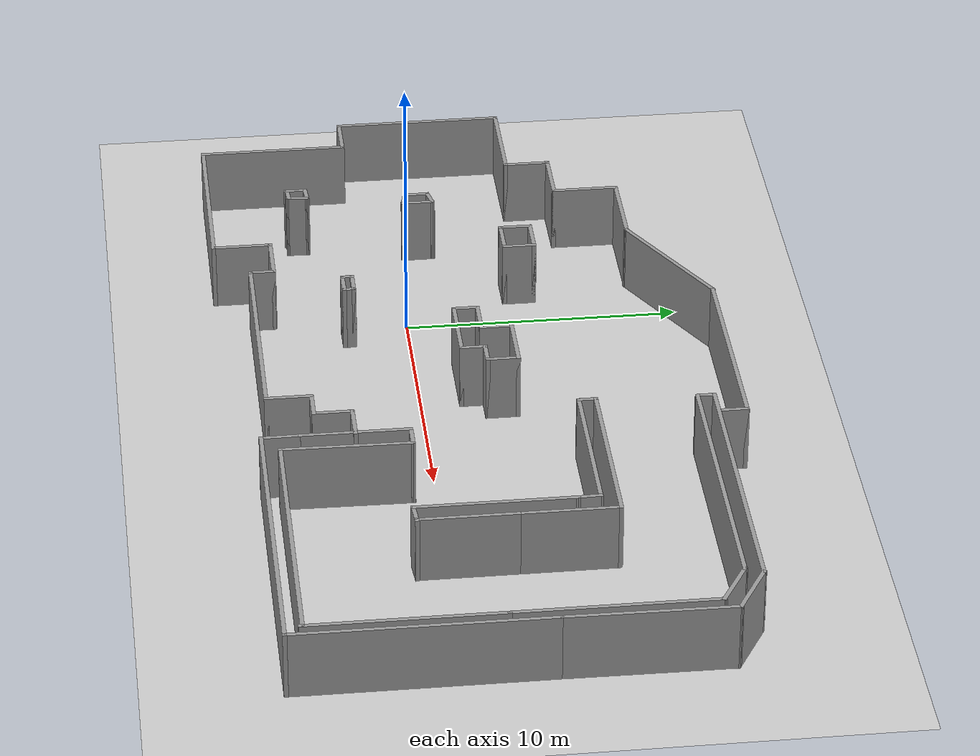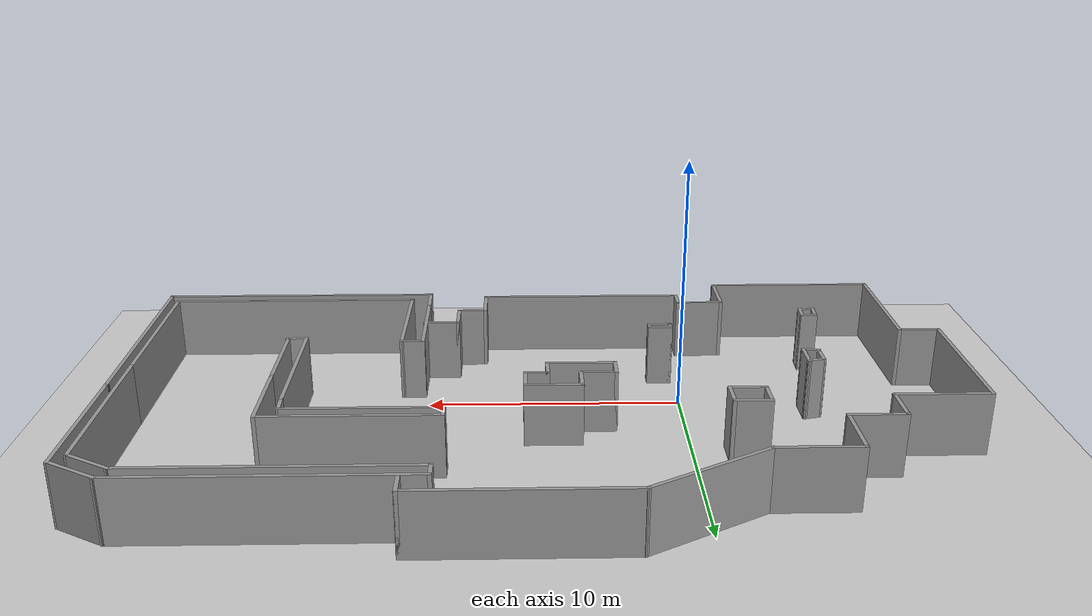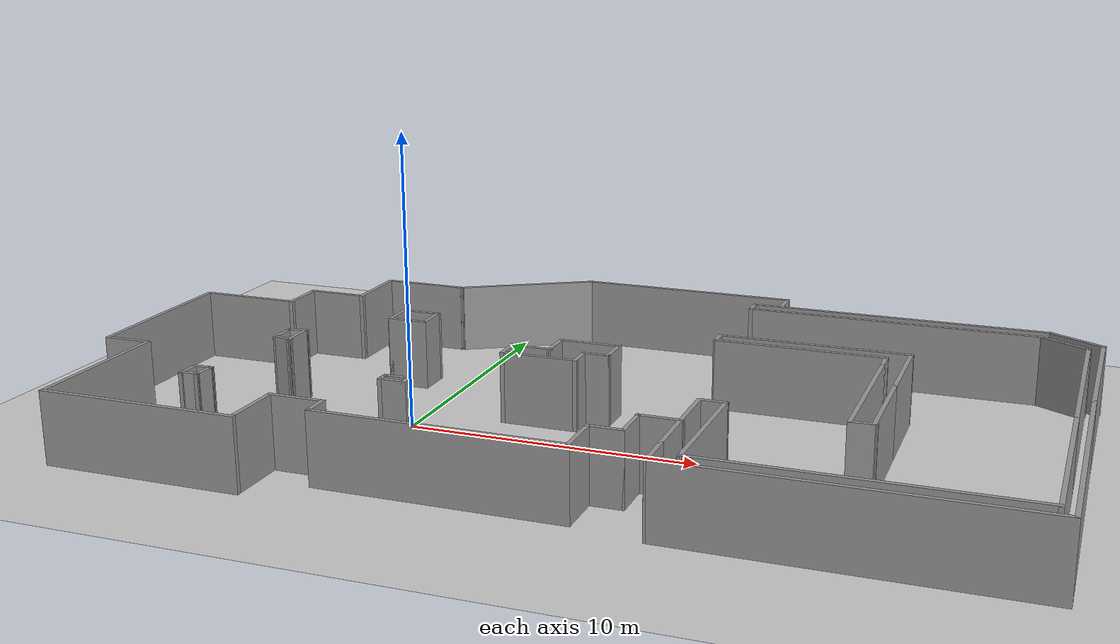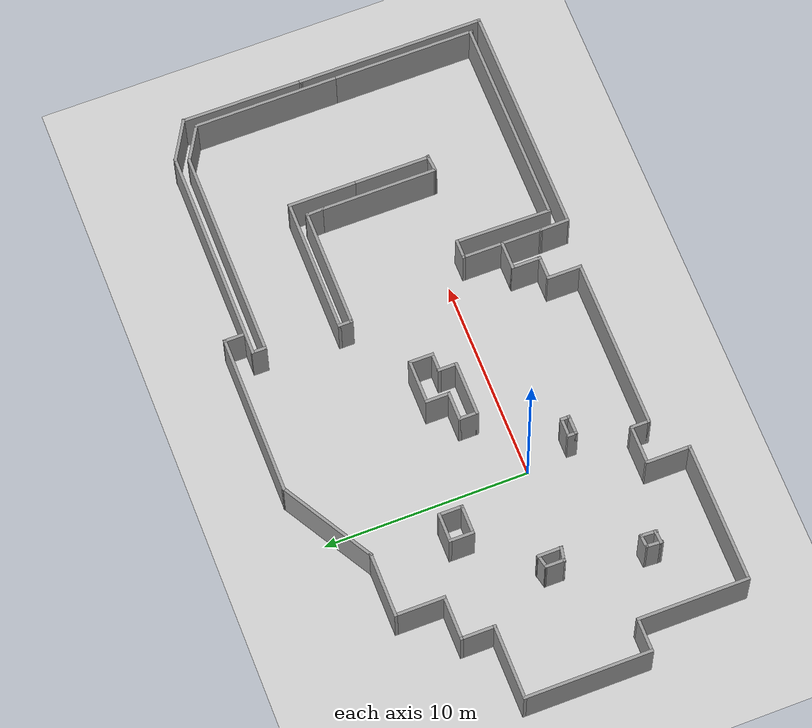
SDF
<sdf version="1.6">
 <world name="default">
  <light name="sun" type="directional">
   <pose>0 0 10 0 -0 0</pose>
   <diffuse>0.8 0.8 0.8 1</diffuse>
   <specular>0.2 0.2 0.2 1</specular>
   <attenuation>
    <range>1000</range>
    <constant>0.9</constant>
    <linear>0.01</linear>
    <quadratic>0.001</quadratic>
   </attenuation>
   <direction>-0.5 0.1 -0.9</direction>
  </light>
  <model name="ground_plane">
   <static>1</static>
   <link name="link">
    <collision name="collision">
     <geometry><plane><normal>0 0 1</normal><size>100 100</size></plane></geometry>
     <surface>
      <contact><collide_bitmask>65535</collide_bitmask></contact>
      <friction><ode><mu>100</mu><mu2>50</mu2></ode></friction>
     </surface>
    </collision>
    <visual name="visual">
     <cast_shadows>0</cast_shadows>
     <geometry><plane><normal>0 0 1</normal><size>100 100</size></plane></geometry>
     <material>
      <script><uri>file://media/materials/scripts/gazebo.material</uri><name>Gazebo/Grey</name></script>
     </material>
    </visual>
   </link>
  </model>
  <gravity>0 0 -9.8</gravity>
  <magnetic_field>6e-06 2.3e-05 -4.2e-05</magnetic_field>
  <atmosphere type="adiabatic"/>
  <physics name="default_physics" default="0" type="ode">
   <max_step_size>0.001</max_step_size>
   <real_time_factor>1</real_time_factor>
   <real_time_update_rate>1000</real_time_update_rate>
  </physics>
  <scene><ambient>0.4 0.4 0.4 1</ambient><background>0.7 0.7 0.7 1</background><shadows>1</shadows></scene>
  <audio><device>default</device></audio>
  <spherical_coordinates>
   <surface_model>EARTH_WGS84</surface_model>
   <latitude_deg>0</latitude_deg>
   <longitude_deg>0</longitude_deg>
   <elevation>0</elevation>
   <heading_deg>0</heading_deg>
  </spherical_coordinates>
  <model name="wow">
   <pose>5.45276 2.03181 0 0 -0 0</pose>
   <link name="Wall_10">
    <collision name="Wall_10_Collision">
     <geometry><box><size>1.25 0.15 2.5</size></box></geometry>
     <pose>0 0 1.25 0 -0 0</pose>
    </collision>
    <visual name="Wall_10_Visual">
     <pose>0 0 1.25 0 -0 0</pose>
     <geometry><box><size>1.25 0.15 2.5</size></box></geometry>
     <material>
      <script><uri>file://media/materials/scripts/gazebo.material</uri><name>Gazebo/Grey</name></script>
      <ambient>1 1 1 1</ambient>
     </material>
     <meta><layer>0</layer></meta>
    </visual>
    <pose>-10.2541 -1.15179 0 0 -0 -1.5708</pose>
   </link>
   <link name="Wall_12">
    <collision name="Wall_12_Collision">
     <geometry><box><size>1 0.15 2.5</size></box></geometry>
     <pose>0 0 1.25 0 -0 0</pose>
    </collision>
    <visual name="Wall_12_Visual">
     <pose>0 0 1.25 0 -0 0</pose>
     <geometry><box><size>1 0.15 2.5</size></box></geometry>
     <material>
      <script><uri>file://media/materials/scripts/gazebo.material</uri><name>Gazebo/Grey</name></script>
      <ambient>1 1 1 1</ambient>
     </material>
     <meta><layer>0</layer></meta>
    </visual>
    <pose>-10.8427 -1.16134 0 0 -0 -1.5708</pose>
   </link>
   <link name="Wall_14">
    <collision name="Wall_14_Collision">
     <geometry><box><size>0.705553 0.15 2.5</size></box></geometry>
     <pose>0 0 1.25 0 -0 0</pose>
    </collision>
    <visual name="Wall_14_Visual">
     <pose>0 0 1.25 0 -0 0</pose>
     <geometry><box><size>0.705553 0.15 2.5</size></box></geometry>
     <material>
      <script><uri>file://media/materials/scripts/gazebo.material</uri><name>Gazebo/Grey</name></script>
      <ambient>1 1 1 1</ambient>
     </material>
     <meta><layer>0</layer></meta>
    </visual>
    <pose>-11.2993 -5.29308 0 0 -0 0.072473</pose>
   </link>
   <link name="Wall_15">
    <collision name="Wall_15_Collision">
     <geometry><box><size>0.834596 0.15 2.5</size></box></geometry>
     <pose>0 0 1.25 0 -0 0</pose>
    </collision>
    <visual name="Wall_15_Visual">
     <pose>0 0 1.25 0 -0 0</pose>
     <geometry><box><size>0.834596 0.15 2.5</size></box></geometry>
     <material>
      <script><uri>file://media/materials/scripts/gazebo.material</uri><name>Gazebo/Grey</name></script>
      <ambient>1 1 1 1</ambient>
     </material>
     <meta><layer>0</layer></meta>
    </visual>
    <pose>-11.0424 -5.6549 0 0 -0 -1.62959</pose>
   </link>
   <link name="Wall_16">
    <collision name="Wall_16_Collision">
     <geometry><box><size>0.705553 0.15 2.5</size></box></geometry>
     <pose>0 0 1.25 0 -0 0</pose>
    </collision>
    <visual name="Wall_16_Visual">
     <pose>0 0 1.25 0 -0 0</pose>
     <geometry><box><size>0.705553 0.15 2.5</size></box></geometry>
     <material>
      <script><uri>file://media/materials/scripts/gazebo.material</uri><name>Gazebo/Grey</name></script>
      <ambient>1 1 1 1</ambient>
     </material>
     <meta><layer>0</layer></meta>
    </visual>
    <pose>-11.3395 -5.97649 0 0 -0 -3.06912</pose>
   </link>
   <link name="Wall_17">
    <collision name="Wall_17_Collision">
     <geometry><box><size>0.834596 0.15 2.5</size></box></geometry>
     <pose>0 0 1.25 0 -0 0</pose>
    </collision>
    <visual name="Wall_17_Visual">
     <pose>0 0 1.25 0 -0 0</pose>
     <geometry><box><size>0.834596 0.15 2.5</size></box></geometry>
     <material>
      <script><uri>file://media/materials/scripts/gazebo.material</uri><name>Gazebo/Grey</name></script>
      <ambient>1 1 1 1</ambient>
     </material>
     <meta><layer>0</layer></meta>
    </visual>
    <pose>-11.5965 -5.69512 0 0 -0 1.512</pose>
   </link>
   <link name="Wall_19">
    <collision name="Wall_19_Collision">
     <geometry><box><size>1.25 0.15 2.5</size></box></geometry>
     <pose>0 0 1.25 0 -0 0</pose>
    </collision>
    <visual name="Wall_19_Visual">
     <pose>0 0 1.25 0 -0 0</pose>
     <geometry><box><size>1.25 0.15 2.5</size></box></geometry>
     <material>
      <script><uri>file://media/materials/scripts/gazebo.material</uri><name>Gazebo/Grey</name></script>
      <ambient>1 1 1 1</ambient>
     </material>
     <meta><layer>0</layer></meta>
    </visual>
    <pose>-8.12453 2.29574 0 0 -0 -1.5708</pose>
   </link>
   <link name="Wall_20">
    <collision name="Wall_20_Collision">
     <geometry><box><size>1.5 0.15 2.5</size></box></geometry>
     <pose>0 0 1.25 0 -0 0</pose>
    </collision>
    <visual name="Wall_20_Visual">
     <pose>0 0 1.25 0 -0 0</pose>
     <geometry><box><size>1.5 0.15 2.5</size></box></geometry>
     <material>
      <script><uri>file://media/materials/scripts/gazebo.material</uri><name>Gazebo/Grey</name></script>
      <ambient>1 1 1 1</ambient>
     </material>
     <meta><layer>0</layer></meta>
    </visual>
    <pose>-7.44953 1.74574 0 0 -0 0</pose>
   </link>
   <link name="Wall_21">
    <collision name="Wall_21_Collision">
     <geometry><box><size>1.25 0.15 2.5</size></box></geometry>
     <pose>0 0 1.25 0 -0 0</pose>
    </collision>
    <visual name="Wall_21_Visual">
     <pose>0 0 1.25 0 -0 0</pose>
     <geometry><box><size>1.25 0.15 2.5</size></box></geometry>
     <material>
      <script><uri>file://media/materials/scripts/gazebo.material</uri><name>Gazebo/Grey</name></script>
      <ambient>1 1 1 1</ambient>
     </material>
     <meta><layer>0</layer></meta>
    </visual>
    <pose>-6.77453 2.29574 0 0 -0 1.5708</pose>
   </link>
   <link name="Wall_22">
    <collision name="Wall_22_Collision">
     <geometry><box><size>1.5 0.15 2.5</size></box></geometry>
     <pose>0 0 1.25 0 -0 0</pose>
    </collision>
    <visual name="Wall_22_Visual">
     <pose>0 0 1.25 0 -0 0</pose>
     <geometry><box><size>1.5 0.15 2.5</size></box></geometry>
     <material>
      <script><uri>file://media/materials/scripts/gazebo.material</uri><name>Gazebo/Grey</name></script>
      <ambient>1 1 1 1</ambient>
     </material>
     <meta><layer>0</layer></meta>
    </visual>
    <pose>-7.44953 2.84574 0 0 -0 3.14159</pose>
   </link>
   <link name="Wall_24">
    <collision name="Wall_24_Collision">
     <geometry><box><size>4 0.15 2.5</size></box></geometry>
     <pose>0 0 1.25 0 -0 0</pose>
    </collision>
    <visual name="Wall_24_Visual">
     <pose>0 0 1.25 0 -0 0</pose>
     <geometry><box><size>4 0.15 2.5</size></box></geometry>
     <material>
      <script><uri>file://media/materials/scripts/gazebo.material</uri><name>Gazebo/Grey</name></script>
      <ambient>1 1 1 1</ambient>
     </material>
     <meta><layer>0</layer></meta>
    </visual>
    <pose>4.81414 -4.78559 0 0 -0 -1.5708</pose>
   </link>
   <link name="Wall_26">
    <collision name="Wall_26_Collision">
     <geometry><box><size>1 0.15 2.5</size></box></geometry>
     <pose>0 0 1.25 0 -0 0</pose>
    </collision>
    <visual name="Wall_26_Visual">
     <pose>0 0 1.25 0 -0 0</pose>
     <geometry><box><size>1 0.15 2.5</size></box></geometry>
     <material>
      <script><uri>file://media/materials/scripts/gazebo.material</uri><name>Gazebo/Grey</name></script>
      <ambient>1 1 1 1</ambient>
     </material>
     <meta><layer>0</layer></meta>
    </visual>
    <pose>5.23914 -2.86059 0 0 -0 0</pose>
   </link>
   <link name="Wall_27">
    <collision name="Wall_27_Collision">
     <geometry><box><size>4.75 0.15 2.5</size></box></geometry>
     <pose>0 0 1.25 0 -0 0</pose>
    </collision>
    <visual name="Wall_27_Visual">
     <pose>0 0 1.25 0 -0 0</pose>
     <geometry><box><size>4.75 0.15 2.5</size></box></geometry>
     <material>
      <script><uri>file://media/materials/scripts/gazebo.material</uri><name>Gazebo/Grey</name></script>
      <ambient>1 1 1 1</ambient>
     </material>
     <meta><layer>0</layer></meta>
    </visual>
    <pose>5.63355 -5.16059 0 0 -0 -1.5841</pose>
   </link>
   <link name="Wall_28">
    <collision name="Wall_28_Collision">
     <geometry><box><size>10.25 0.15 2.5</size></box></geometry>
     <pose>0 0 1.25 0 -0 0</pose>
    </collision>
    <visual name="Wall_28_Visual">
     <pose>0 0 1.25 0 -0 0</pose>
     <geometry><box><size>10.25 0.15 2.5</size></box></geometry>
     <material>
      <script><uri>file://media/materials/scripts/gazebo.material</uri><name>Gazebo/Grey</name></script>
      <ambient>1 1 1 1</ambient>
     </material>
     <meta><layer>0</layer></meta>
    </visual>
    <pose>10.6835 -7.46059 0 0 -0 0</pose>
   </link>
   <link name="Wall_30">
    <collision name="Wall_30_Collision">
     <geometry><box><size>5.75 0.15 2.5</size></box></geometry>
     <pose>0 0 1.25 0 -0 0</pose>
    </collision>
    <visual name="Wall_30_Visual">
     <pose>0 0 1.25 0 -0 0</pose>
     <geometry><box><size>5.75 0.15 2.5</size></box></geometry>
     <material>
      <script><uri>file://media/materials/scripts/gazebo.material</uri><name>Gazebo/Grey</name></script>
      <ambient>1 1 1 1</ambient>
     </material>
     <meta><layer>0</layer></meta>
    </visual>
    <pose>9.51586 -0.401675 0 0 -0 1.5708</pose>
   </link>
   <link name="Wall_32">
    <collision name="Wall_32_Collision">
     <geometry><box><size>0.911409 0.15 2.5</size></box></geometry>
     <pose>0 0 1.25 0 -0 0</pose>
    </collision>
    <visual name="Wall_32_Visual">
     <pose>0 0 1.25 0 -0 0</pose>
     <geometry><box><size>0.911409 0.15 2.5</size></box></geometry>
     <material>
      <script><uri>file://media/materials/scripts/gazebo.material</uri><name>Gazebo/Grey</name></script>
      <ambient>1 1 1 1</ambient>
     </material>
     <meta><layer>0</layer></meta>
    </visual>
    <pose>9.89539 -3.20703 0 0 -0 0.078423</pose>
   </link>
   <link name="Wall_33">
    <collision name="Wall_33_Collision">
     <geometry><box><size>3.75 0.15 2.5</size></box></geometry>
     <pose>0 0 1.25 0 -0 0</pose>
    </collision>
    <visual name="Wall_33_Visual">
     <pose>0 0 1.25 0 -0 0</pose>
     <geometry><box><size>3.75 0.15 2.5</size></box></geometry>
     <material>
      <script><uri>file://media/materials/scripts/gazebo.material</uri><name>Gazebo/Grey</name></script>
      <ambient>1 1 1 1</ambient>
     </material>
     <meta><layer>0</layer></meta>
    </visual>
    <pose>10.2397 -1.3772 0 0 -0 1.5708</pose>
   </link>
   <link name="Wall_36">
    <collision name="Wall_36_Collision">
     <geometry><box><size>7 0.15 2.5</size></box></geometry>
     <pose>0 0 1.25 0 -0 0</pose>
    </collision>
    <visual name="Wall_36_Visual">
     <pose>0 0 1.25 0 -0 0</pose>
     <geometry><box><size>7 0.15 2.5</size></box></geometry>
     <material>
      <script><uri>file://media/materials/scripts/gazebo.material</uri><name>Gazebo/Grey</name></script>
      <ambient>1 1 1 1</ambient>
     </material>
     <meta><layer>0</layer></meta>
    </visual>
    <pose>15.7639 -4.09274 0 0 -0 -1.5708</pose>
   </link>
   <link name="Wall_39">
    <collision name="Wall_39_Collision">
     <geometry><box><size>9.25 0.15 2.5</size></box></geometry>
     <pose>0 0 1.25 0 -0 0</pose>
    </collision>
    <visual name="Wall_39_Visual">
     <pose>0 0 1.25 0 -0 0</pose>
     <geometry><box><size>9.25 0.15 2.5</size></box></geometry>
     <material>
      <script><uri>file://media/materials/scripts/gazebo.material</uri><name>Gazebo/Grey</name></script>
      <ambient>1 1 1 1</ambient>
     </material>
     <meta><layer>0</layer></meta>
    </visual>
    <pose>16.1862 -3.52365 0 0 -0 -1.5708</pose>
   </link>
   <link name="Wall_40">
    <collision name="Wall_40_Collision">
     <geometry><box><size>11.5 0.15 2.5</size></box></geometry>
     <pose>0 0 1.25 0 -0 0</pose>
    </collision>
    <visual name="Wall_40_Visual">
     <pose>0 0 1.25 0 -0 0</pose>
     <geometry><box><size>11.5 0.15 2.5</size></box></geometry>
     <material>
      <script><uri>file://media/materials/scripts/gazebo.material</uri><name>Gazebo/Grey</name></script>
      <ambient>1 1 1 1</ambient>
     </material>
     <meta><layer>0</layer></meta>
    </visual>
    <pose>10.5112 -8.07365 0 0 -0 3.14159</pose>
   </link>
   <link name="Wall_41">
    <collision name="Wall_41_Collision">
     <geometry><box><size>1.51323 0.15 2.5</size></box></geometry>
     <pose>0 0 1.25 0 -0 0</pose>
    </collision>
    <visual name="Wall_41_Visual">
     <pose>0 0 1.25 0 -0 0</pose>
     <geometry><box><size>1.51323 0.15 2.5</size></box></geometry>
     <material>
      <script><uri>file://media/materials/scripts/gazebo.material</uri><name>Gazebo/Grey</name></script>
      <ambient>1 1 1 1</ambient>
     </material>
     <meta><layer>0</layer></meta>
    </visual>
    <pose>4.82517 -7.39212 0 0 -0 1.58699</pose>
   </link>
   <link name="Wall_43">
    <collision name="Wall_43_Collision">
     <geometry><box><size>1.5 0.15 2.5</size></box></geometry>
     <pose>0 0 1.25 0 -0 0</pose>
    </collision>
    <visual name="Wall_43_Visual">
     <pose>0 0 1.25 0 -0 0</pose>
     <geometry><box><size>1.5 0.15 2.5</size></box></geometry>
     <material>
      <script><uri>file://media/materials/scripts/gazebo.material</uri><name>Gazebo/Grey</name></script>
      <ambient>1 1 1 1</ambient>
     </material>
     <meta><layer>0</layer></meta>
    </visual>
    <pose>-2.05069 0.283208 0 0 -0 0</pose>
   </link>
   <link name="Wall_44">
    <collision name="Wall_44_Collision">
     <geometry><box><size>1.25 0.15 2.5</size></box></geometry>
     <pose>0 0 1.25 0 -0 0</pose>
    </collision>
    <visual name="Wall_44_Visual">
     <pose>0 0 1.25 0 -0 0</pose>
     <geometry><box><size>1.25 0.15 2.5</size></box></geometry>
     <material>
      <script><uri>file://media/materials/scripts/gazebo.material</uri><name>Gazebo/Grey</name></script>
      <ambient>1 1 1 1</ambient>
     </material>
     <meta><layer>0</layer></meta>
    </visual>
    <pose>-1.37569 0.833208 0 0 -0 1.5708</pose>
   </link>
   <link name="Wall_45">
    <collision name="Wall_45_Collision">
     <geometry><box><size>2.25 0.15 2.5</size></box></geometry>
     <pose>0 0 1.25 0 -0 0</pose>
    </collision>
    <visual name="Wall_45_Visual">
     <pose>0 0 1.25 0 -0 0</pose>
     <geometry><box><size>2.25 0.15 2.5</size></box></geometry>
     <material>
      <script><uri>file://media/materials/scripts/gazebo.material</uri><name>Gazebo/Grey</name></script>
      <ambient>1 1 1 1</ambient>
     </material>
     <meta><layer>0</layer></meta>
    </visual>
    <pose>-0.325689 1.38321 0 0 -0 0</pose>
   </link>
   <link name="Wall_46">
    <collision name="Wall_46_Collision">
     <geometry><box><size>1.25 0.15 2.5</size></box></geometry>
     <pose>0 0 1.25 0 -0 0</pose>
    </collision>
    <visual name="Wall_46_Visual">
     <pose>0 0 1.25 0 -0 0</pose>
     <geometry><box><size>1.25 0.15 2.5</size></box></geometry>
     <material>
      <script><uri>file://media/materials/scripts/gazebo.material</uri><name>Gazebo/Grey</name></script>
      <ambient>1 1 1 1</ambient>
     </material>
     <meta><layer>0</layer></meta>
    </visual>
    <pose>0.724311 0.833208 0 0 -0 -1.5708</pose>
   </link>
   <link name="Wall_47">
    <collision name="Wall_47_Collision">
     <geometry><box><size>1 0.15 2.5</size></box></geometry>
     <pose>0 0 1.25 0 -0 0</pose>
    </collision>
    <visual name="Wall_47_Visual">
     <pose>0 0 1.25 0 -0 0</pose>
     <geometry><box><size>1 0.15 2.5</size></box></geometry>
     <material>
      <script><uri>file://media/materials/scripts/gazebo.material</uri><name>Gazebo/Grey</name></script>
      <ambient>1 1 1 1</ambient>
     </material>
     <meta><layer>0</layer></meta>
    </visual>
    <pose>0.299311 0.283208 0 0 -0 3.14159</pose>
   </link>
   <link name="Wall_48">
    <collision name="Wall_48_Collision">
     <geometry><box><size>1 0.15 2.5</size></box></geometry>
     <pose>0 0 1.25 0 -0 0</pose>
    </collision>
    <visual name="Wall_48_Visual">
     <pose>0 0 1.25 0 -0 0</pose>
     <geometry><box><size>1 0.15 2.5</size></box></geometry>
     <material>
      <script><uri>file://media/materials/scripts/gazebo.material</uri><name>Gazebo/Grey</name></script>
      <ambient>1 1 1 1</ambient>
     </material>
     <meta><layer>0</layer></meta>
    </visual>
    <pose>-0.125689 -0.141792 0 0 -0 -1.5708</pose>
   </link>
   <link name="Wall_5">
    <collision name="Wall_5_Collision">
     <geometry><box><size>1 0.15 2.5</size></box></geometry>
     <pose>0 0 1.25 0 -0 0</pose>
    </collision>
    <visual name="Wall_5_Visual">
     <pose>0 0 1.25 0 -0 0</pose>
     <geometry><box><size>1 0.15 2.5</size></box></geometry>
     <material>
      <script><uri>file://media/materials/scripts/gazebo.material</uri><name>Gazebo/Grey</name></script>
      <ambient>1 1 1 1</ambient>
     </material>
     <meta><layer>0</layer></meta>
    </visual>
    <pose>-2.72569 -0.141792 0 0 -0 -1.5708</pose>
   </link>
   <link name="Wall_50">
    <collision name="Wall_50_Collision">
     <geometry><box><size>3.5 0.15 2.5</size></box></geometry>
     <pose>0 0 1.25 0 -0 0</pose>
    </collision>
    <visual name="Wall_50_Visual">
     <pose>0 0 1.25 0 -0 0</pose>
     <geometry><box><size>3.5 0.15 2.5</size></box></geometry>
     <material>
      <script><uri>file://media/materials/scripts/gazebo.material</uri><name>Gazebo/Grey</name></script>
      <ambient>1 1 1 1</ambient>
     </material>
     <meta><layer>0</layer></meta>
    </visual>
    <pose>10.2397 2.0978 0 0 -0 1.5708</pose>
   </link>
   <link name="Wall_51">
    <collision name="Wall_51_Collision">
     <geometry><box><size>6.75 0.15 2.5</size></box></geometry>
     <pose>0 0 1.25 0 -0 0</pose>
    </collision>
    <visual name="Wall_51_Visual">
     <pose>0 0 1.25 0 -0 0</pose>
     <geometry><box><size>6.75 0.15 2.5</size></box></geometry>
     <material>
      <script><uri>file://media/materials/scripts/gazebo.material</uri><name>Gazebo/Grey</name></script>
      <ambient>1 1 1 1</ambient>
     </material>
     <meta><layer>0</layer></meta>
    </visual>
    <pose>6.93975 3.7728 0 0 -0 3.14159</pose>
   </link>
   <link name="Wall_52">
    <collision name="Wall_52_Collision">
     <geometry><box><size>0.75 0.15 2.5</size></box></geometry>
     <pose>0 0 1.25 0 -0 0</pose>
    </collision>
    <visual name="Wall_52_Visual">
     <pose>0 0 1.25 0 -0 0</pose>
     <geometry><box><size>0.75 0.15 2.5</size></box></geometry>
     <material>
      <script><uri>file://media/materials/scripts/gazebo.material</uri><name>Gazebo/Grey</name></script>
      <ambient>1 1 1 1</ambient>
     </material>
     <meta><layer>0</layer></meta>
    </visual>
    <pose>3.63975 3.4728 0 0 -0 -1.5708</pose>
   </link>
   <link name="Wall_53">
    <collision name="Wall_53_Collision">
     <geometry><box><size>6 0.15 2.5</size></box></geometry>
     <pose>0 0 1.25 0 -0 0</pose>
    </collision>
    <visual name="Wall_53_Visual">
     <pose>0 0 1.25 0 -0 0</pose>
     <geometry><box><size>6 0.15 2.5</size></box></geometry>
     <material>
      <script><uri>file://media/materials/scripts/gazebo.material</uri><name>Gazebo/Grey</name></script>
      <ambient>1 1 1 1</ambient>
     </material>
     <meta><layer>0</layer></meta>
    </visual>
    <pose>6.56475 3.1728 0 0 -0 0</pose>
   </link>
   <link name="Wall_54">
    <collision name="Wall_54_Collision">
     <geometry><box><size>0.924912 0.15 2.5</size></box></geometry>
     <pose>0 0 1.25 0 -0 0</pose>
    </collision>
    <visual name="Wall_54_Visual">
     <pose>0 0 1.25 0 -0 0</pose>
     <geometry><box><size>0.924912 0.15 2.5</size></box></geometry>
     <material>
      <script><uri>file://media/materials/scripts/gazebo.material</uri><name>Gazebo/Grey</name></script>
      <ambient>1 1 1 1</ambient>
     </material>
     <meta><layer>0</layer></meta>
    </visual>
    <pose>9.5028 2.78556 0 0 -0 -1.5371</pose>
   </link>
   <link name="Wall_56">
    <collision name="Wall_56_Collision">
     <geometry><box><size>7.25 0.15 2.5</size></box></geometry>
     <pose>0 0 1.25 0 -0 0</pose>
    </collision>
    <visual name="Wall_56_Visual">
     <pose>0 0 1.25 0 -0 0</pose>
     <geometry><box><size>7.25 0.15 2.5</size></box></geometry>
     <material>
      <script><uri>file://media/materials/scripts/gazebo.material</uri><name>Gazebo/Grey</name></script>
      <ambient>1 1 1 1</ambient>
     </material>
     <meta><layer>0</layer></meta>
    </visual>
    <pose>15.7639 2.88225 0 0 -0 1.5708</pose>
   </link>
   <link name="Wall_57">
    <collision name="Wall_57_Collision">
     <geometry><box><size>2 0.15 2.5</size></box></geometry>
     <pose>0 0 1.25 0 -0 0</pose>
    </collision>
    <visual name="Wall_57_Visual">
     <pose>0 0 1.25 0 -0 0</pose>
     <geometry><box><size>2 0.15 2.5</size></box></geometry>
     <material>
      <script><uri>file://media/materials/scripts/gazebo.material</uri><name>Gazebo/Grey</name></script>
      <ambient>1 1 1 1</ambient>
     </material>
     <meta><layer>0</layer></meta>
    </visual>
    <pose>14.9628 6.89475 0 0 -0 2.61799</pose>
   </link>
   <link name="Wall_58">
    <collision name="Wall_58_Collision">
     <geometry><box><size>10.5 0.15 2.5</size></box></geometry>
     <pose>0 0 1.25 0 -0 0</pose>
    </collision>
    <visual name="Wall_58_Visual">
     <pose>0 0 1.25 0 -0 0</pose>
     <geometry><box><size>10.5 0.15 2.5</size></box></geometry>
     <material>
      <script><uri>file://media/materials/scripts/gazebo.material</uri><name>Gazebo/Grey</name></script>
      <ambient>1 1 1 1</ambient>
     </material>
     <meta><layer>0</layer></meta>
    </visual>
    <pose>8.98671 7.35726 0 0 -0 3.14159</pose>
   </link>
   <link name="Wall_59">
    <collision name="Wall_59_Collision">
     <geometry><box><size>0.75 0.15 2.5</size></box></geometry>
     <pose>0 0 1.25 0 -0 0</pose>
    </collision>
    <visual name="Wall_59_Visual">
     <pose>0 0 1.25 0 -0 0</pose>
     <geometry><box><size>0.75 0.15 2.5</size></box></geometry>
     <material>
      <script><uri>file://media/materials/scripts/gazebo.material</uri><name>Gazebo/Grey</name></script>
      <ambient>1 1 1 1</ambient>
     </material>
     <meta><layer>0</layer></meta>
    </visual>
    <pose>3.8117 7.65726 0 0 -0 1.5708</pose>
   </link>
   <link name="Wall_6">
    <collision name="Wall_6_Collision">
     <geometry><box><size>2.75 0.15 2.5</size></box></geometry>
     <pose>0 0 1.25 0 -0 0</pose>
    </collision>
    <visual name="Wall_6_Visual">
     <pose>0 0 1.25 0 -0 0</pose>
     <geometry><box><size>2.75 0.15 2.5</size></box></geometry>
     <material>
      <script><uri>file://media/materials/scripts/gazebo.material</uri><name>Gazebo/Grey</name></script>
      <ambient>1 1 1 1</ambient>
     </material>
     <meta><layer>0</layer></meta>
    </visual>
    <pose>-1.42569 -0.566792 0 0 -0 0</pose>
   </link>
   <link name="Wall_60">
    <collision name="Wall_60_Collision">
     <geometry><box><size>10.75 0.15 2.5</size></box></geometry>
     <pose>0 0 1.25 0 -0 0</pose>
    </collision>
    <visual name="Wall_60_Visual">
     <pose>0 0 1.25 0 -0 0</pose>
     <geometry><box><size>10.75 0.15 2.5</size></box></geometry>
     <material>
      <script><uri>file://media/materials/scripts/gazebo.material</uri><name>Gazebo/Grey</name></script>
      <ambient>1 1 1 1</ambient>
     </material>
     <meta><layer>0</layer></meta>
    </visual>
    <pose>9.11171 7.95725 0 0 -0 0</pose>
   </link>
   <link name="Wall_61">
    <collision name="Wall_61_Collision">
     <geometry><box><size>2.25 0.15 2.5</size></box></geometry>
     <pose>0 0 1.25 0 -0 0</pose>
    </collision>
    <visual name="Wall_61_Visual">
     <pose>0 0 1.25 0 -0 0</pose>
     <geometry><box><size>2.25 0.15 2.5</size></box></geometry>
     <material>
      <script><uri>file://media/materials/scripts/gazebo.material</uri><name>Gazebo/Grey</name></script>
      <ambient>1 1 1 1</ambient>
     </material>
     <meta><layer>0</layer></meta>
    </visual>
    <pose>15.321 7.43225 0 0 -0 -0.523599</pose>
   </link>
   <link name="Wall_62">
    <collision name="Wall_62_Collision">
     <geometry><box><size>6.03107 0.15 2.5</size></box></geometry>
     <pose>0 0 1.25 0 -0 0</pose>
    </collision>
    <visual name="Wall_62_Visual">
     <pose>0 0 1.25 0 -0 0</pose>
     <geometry><box><size>6.03107 0.15 2.5</size></box></geometry>
     <material>
      <script><uri>file://media/materials/scripts/gazebo.material</uri><name>Gazebo/Grey</name></script>
      <ambient>1 1 1 1</ambient>
     </material>
     <meta><layer>0</layer></meta>
    </visual>
    <pose>16.2083 3.9668 0 0 -0 -1.5783</pose>
   </link>
   <link name="Wall_64">
    <collision name="Wall_64_Collision">
     <geometry><box><size>1 0.15 2.5</size></box></geometry>
     <pose>0 0 1.25 0 -0 0</pose>
    </collision>
    <visual name="Wall_64_Visual">
     <pose>0 0 1.25 0 -0 0</pose>
     <geometry><box><size>1 0.15 2.5</size></box></geometry>
     <material>
      <script><uri>file://media/materials/scripts/gazebo.material</uri><name>Gazebo/Grey</name></script>
      <ambient>1 1 1 1</ambient>
     </material>
     <meta><layer>0</layer></meta>
    </visual>
    <pose>4.80892 8.53627 0 0 -0 1.5708</pose>
   </link>
   <link name="Wall_65">
    <collision name="Wall_65_Collision">
     <geometry><box><size>8 0.15 2.5</size></box></geometry>
     <pose>0 0 1.25 0 -0 0</pose>
    </collision>
    <visual name="Wall_65_Visual">
     <pose>0 0 1.25 0 -0 0</pose>
     <geometry><box><size>8 0.15 2.5</size></box></geometry>
     <material>
      <script><uri>file://media/materials/scripts/gazebo.material</uri><name>Gazebo/Grey</name></script>
      <ambient>1 1 1 1</ambient>
     </material>
     <meta><layer>0</layer></meta>
    </visual>
    <pose>0.88392 8.96128 0 0 -0 3.14159</pose>
   </link>
   <link name="Wall_66">
    <collision name="Wall_66_Collision">
     <geometry><box><size>5.25 0.15 2.5</size></box></geometry>
     <pose>0 0 1.25 0 -0 0</pose>
    </collision>
    <visual name="Wall_66_Visual">
     <pose>0 0 1.25 0 -0 0</pose>
     <geometry><box><size>5.25 0.15 2.5</size></box></geometry>
     <material>
      <script><uri>file://media/materials/scripts/gazebo.material</uri><name>Gazebo/Grey</name></script>
      <ambient>1 1 1 1</ambient>
     </material>
     <meta><layer>0</layer></meta>
    </visual>
    <pose>-5.24944 7.68627 0 0 -0 -2.61799</pose>
   </link>
   <link name="Wall_67">
    <collision name="Wall_67_Collision">
     <geometry><box><size>3.25 0.15 2.5</size></box></geometry>
     <pose>0 0 1.25 0 -0 0</pose>
    </collision>
    <visual name="Wall_67_Visual">
     <pose>0 0 1.25 0 -0 0</pose>
     <geometry><box><size>3.25 0.15 2.5</size></box></geometry>
     <material>
      <script><uri>file://media/materials/scripts/gazebo.material</uri><name>Gazebo/Grey</name></script>
      <ambient>1 1 1 1</ambient>
     </material>
     <meta><layer>0</layer></meta>
    </visual>
    <pose>-9.00781 6.41127 0 0 -0 3.14159</pose>
   </link>
   <link name="Wall_68">
    <collision name="Wall_68_Collision">
     <geometry><box><size>2.5 0.15 2.5</size></box></geometry>
     <pose>0 0 1.25 0 -0 0</pose>
    </collision>
    <visual name="Wall_68_Visual">
     <pose>0 0 1.25 0 -0 0</pose>
     <geometry><box><size>2.5 0.15 2.5</size></box></geometry>
     <material>
      <script><uri>file://media/materials/scripts/gazebo.material</uri><name>Gazebo/Grey</name></script>
      <ambient>1 1 1 1</ambient>
     </material>
     <meta><layer>0</layer></meta>
    </visual>
    <pose>-10.5578 5.23627 0 0 -0 -1.5708</pose>
   </link>
   <link name="Wall_69">
    <collision name="Wall_69_Collision">
     <geometry><box><size>2.25 0.15 2.5</size></box></geometry>
     <pose>0 0 1.25 0 -0 0</pose>
    </collision>
    <visual name="Wall_69_Visual">
     <pose>0 0 1.25 0 -0 0</pose>
     <geometry><box><size>2.25 0.15 2.5</size></box></geometry>
     <material>
      <script><uri>file://media/materials/scripts/gazebo.material</uri><name>Gazebo/Grey</name></script>
      <ambient>1 1 1 1</ambient>
     </material>
     <meta><layer>0</layer></meta>
    </visual>
    <pose>-11.6078 4.06128 0 0 -0 3.14159</pose>
   </link>
   <link name="Wall_70">
    <collision name="Wall_70_Collision">
     <geometry><box><size>1.75 0.15 2.5</size></box></geometry>
     <pose>0 0 1.25 0 -0 0</pose>
    </collision>
    <visual name="Wall_70_Visual">
     <pose>0 0 1.25 0 -0 0</pose>
     <geometry><box><size>1.75 0.15 2.5</size></box></geometry>
     <material>
      <script><uri>file://media/materials/scripts/gazebo.material</uri><name>Gazebo/Grey</name></script>
      <ambient>1 1 1 1</ambient>
     </material>
     <meta><layer>0</layer></meta>
    </visual>
    <pose>-12.6578 3.26127 0 0 -0 -1.5708</pose>
   </link>
   <link name="Wall_71">
    <collision name="Wall_71_Collision">
     <geometry><box><size>3.75 0.15 2.5</size></box></geometry>
     <pose>0 0 1.25 0 -0 0</pose>
    </collision>
    <visual name="Wall_71_Visual">
     <pose>0 0 1.25 0 -0 0</pose>
     <geometry><box><size>3.75 0.15 2.5</size></box></geometry>
     <material>
      <script><uri>file://media/materials/scripts/gazebo.material</uri><name>Gazebo/Grey</name></script>
      <ambient>1 1 1 1</ambient>
     </material>
     <meta><layer>0</layer></meta>
    </visual>
    <pose>-14.4578 2.46128 0 0 -0 3.14159</pose>
   </link>
   <link name="Wall_72">
    <collision name="Wall_72_Collision">
     <geometry><box><size>6.25 0.15 2.5</size></box></geometry>
     <pose>0 0 1.25 0 -0 0</pose>
    </collision>
    <visual name="Wall_72_Visual">
     <pose>0 0 1.25 0 -0 0</pose>
     <geometry><box><size>6.25 0.15 2.5</size></box></geometry>
     <material>
      <script><uri>file://media/materials/scripts/gazebo.material</uri><name>Gazebo/Grey</name></script>
      <ambient>1 1 1 1</ambient>
     </material>
     <meta><layer>0</layer></meta>
    </visual>
    <pose>-16.2578 -0.588726 0 0 -0 -1.5708</pose>
   </link>
   <link name="Wall_73">
    <collision name="Wall_73_Collision">
     <geometry><box><size>1.75 0.15 2.5</size></box></geometry>
     <pose>0 0 1.25 0 -0 0</pose>
    </collision>
    <visual name="Wall_73_Visual">
     <pose>0 0 1.25 0 -0 0</pose>
     <geometry><box><size>1.75 0.15 2.5</size></box></geometry>
     <material>
      <script><uri>file://media/materials/scripts/gazebo.material</uri><name>Gazebo/Grey</name></script>
      <ambient>1 1 1 1</ambient>
     </material>
     <meta><layer>0</layer></meta>
    </visual>
    <pose>-15.4578 -3.63873 0 0 -0 0</pose>
   </link>
   <link name="Wall_74">
    <collision name="Wall_74_Collision">
     <geometry><box><size>5.5 0.15 2.5</size></box></geometry>
     <pose>0 0 1.25 0 -0 0</pose>
    </collision>
    <visual name="Wall_74_Visual">
     <pose>0 0 1.25 0 -0 0</pose>
     <geometry><box><size>5.5 0.15 2.5</size></box></geometry>
     <material>
      <script><uri>file://media/materials/scripts/gazebo.material</uri><name>Gazebo/Grey</name></script>
      <ambient>1 1 1 1</ambient>
     </material>
     <meta><layer>0</layer></meta>
    </visual>
    <pose>-14.6578 -6.31372 0 0 -0 -1.5708</pose>
   </link>
   <link name="Wall_75">
    <collision name="Wall_75_Collision">
     <geometry><box><size>7 0.15 2.5</size></box></geometry>
     <pose>0 0 1.25 0 -0 0</pose>
    </collision>
    <visual name="Wall_75_Visual">
     <pose>0 0 1.25 0 -0 0</pose>
     <geometry><box><size>7 0.15 2.5</size></box></geometry>
     <material>
      <script><uri>file://media/materials/scripts/gazebo.material</uri><name>Gazebo/Grey</name></script>
      <ambient>1 1 1 1</ambient>
     </material>
     <meta><layer>0</layer></meta>
    </visual>
    <pose>-11.2328 -8.98873 0 0 -0 0</pose>
   </link>
   <link name="Wall_76">
    <collision name="Wall_76_Collision">
     <geometry><box><size>2.25 0.15 2.5</size></box></geometry>
     <pose>0 0 1.25 0 -0 0</pose>
    </collision>
    <visual name="Wall_76_Visual">
     <pose>0 0 1.25 0 -0 0</pose>
     <geometry><box><size>2.25 0.15 2.5</size></box></geometry>
     <material>
      <script><uri>file://media/materials/scripts/gazebo.material</uri><name>Gazebo/Grey</name></script>
      <ambient>1 1 1 1</ambient>
     </material>
     <meta><layer>0</layer></meta>
    </visual>
    <pose>-7.80781 -7.93872 0 0 -0 1.5708</pose>
   </link>
   <link name="Wall_77">
    <collision name="Wall_77_Collision">
     <geometry><box><size>2 0.15 2.5</size></box></geometry>
     <pose>0 0 1.25 0 -0 0</pose>
    </collision>
    <visual name="Wall_77_Visual">
     <pose>0 0 1.25 0 -0 0</pose>
     <geometry><box><size>2 0.15 2.5</size></box></geometry>
     <material>
      <script><uri>file://media/materials/scripts/gazebo.material</uri><name>Gazebo/Grey</name></script>
      <ambient>1 1 1 1</ambient>
     </material>
     <meta><layer>0</layer></meta>
    </visual>
    <pose>-6.88281 -6.88873 0 0 -0 0</pose>
   </link>
   <link name="Wall_78">
    <collision name="Wall_78_Collision">
     <geometry><box><size>1 0.15 2.5</size></box></geometry>
     <pose>0 0 1.25 0 -0 0</pose>
    </collision>
    <visual name="Wall_78_Visual">
     <pose>0 0 1.25 0 -0 0</pose>
     <geometry><box><size>1 0.15 2.5</size></box></geometry>
     <material>
      <script><uri>file://media/materials/scripts/gazebo.material</uri><name>Gazebo/Grey</name></script>
      <ambient>1 1 1 1</ambient>
     </material>
     <meta><layer>0</layer></meta>
    </visual>
    <pose>-5.95781 -7.31372 0 0 -0 -1.5708</pose>
   </link>
   <link name="Wall_79">
    <collision name="Wall_79_Collision">
     <geometry><box><size>8.5 0.15 2.5</size></box></geometry>
     <pose>0 0 1.25 0 -0 0</pose>
    </collision>
    <visual name="Wall_79_Visual">
     <pose>0 0 1.25 0 -0 0</pose>
     <geometry><box><size>8.5 0.15 2.5</size></box></geometry>
     <material>
      <script><uri>file://media/materials/scripts/gazebo.material</uri><name>Gazebo/Grey</name></script>
      <ambient>1 1 1 1</ambient>
     </material>
     <meta><layer>0</layer></meta>
    </visual>
    <pose>-1.78281 -7.73873 0 0 -0 0</pose>
   </link>
   <link name="Wall_80">
    <collision name="Wall_80_Collision">
     <geometry><box><size>1.75 0.15 2.5</size></box></geometry>
     <pose>0 0 1.25 0 -0 0</pose>
    </collision>
    <visual name="Wall_80_Visual">
     <pose>0 0 1.25 0 -0 0</pose>
     <geometry><box><size>1.75 0.15 2.5</size></box></geometry>
     <material>
      <script><uri>file://media/materials/scripts/gazebo.material</uri><name>Gazebo/Grey</name></script>
      <ambient>1 1 1 1</ambient>
     </material>
     <meta><layer>0</layer></meta>
    </visual>
    <pose>2.39219 -6.93872 0 0 -0 1.5708</pose>
   </link>
   <link name="Wall_81">
    <collision name="Wall_81_Collision">
     <geometry><box><size>1.25 0.15 2.5</size></box></geometry>
     <pose>0 0 1.25 0 -0 0</pose>
    </collision>
    <visual name="Wall_81_Visual">
     <pose>0 0 1.25 0 -0 0</pose>
     <geometry><box><size>1.25 0.15 2.5</size></box></geometry>
     <material>
      <script><uri>file://media/materials/scripts/gazebo.material</uri><name>Gazebo/Grey</name></script>
      <ambient>1 1 1 1</ambient>
     </material>
     <meta><layer>0</layer></meta>
    </visual>
    <pose>2.94219 -6.13873 0 0 -0 0</pose>
   </link>
   <link name="Wall_82">
    <collision name="Wall_82_Collision">
     <geometry><box><size>1.5 0.15 2.5</size></box></geometry>
     <pose>0 0 1.25 0 -0 0</pose>
    </collision>
    <visual name="Wall_82_Visual">
     <pose>0 0 1.25 0 -0 0</pose>
     <geometry><box><size>1.5 0.15 2.5</size></box></geometry>
     <material>
      <script><uri>file://media/materials/scripts/gazebo.material</uri><name>Gazebo/Grey</name></script>
      <ambient>1 1 1 1</ambient>
     </material>
     <meta><layer>0</layer></meta>
    </visual>
    <pose>3.49219 -5.46373 0 0 -0 1.5708</pose>
   </link>
   <link name="Wall_83">
    <collision name="Wall_83_Collision">
     <geometry><box><size>1.5 0.15 2.5</size></box></geometry>
     <pose>0 0 1.25 0 -0 0</pose>
    </collision>
    <visual name="Wall_83_Visual">
     <pose>0 0 1.25 0 -0 0</pose>
     <geometry><box><size>1.5 0.15 2.5</size></box></geometry>
     <material>
      <script><uri>file://media/materials/scripts/gazebo.material</uri><name>Gazebo/Grey</name></script>
      <ambient>1 1 1 1</ambient>
     </material>
     <meta><layer>0</layer></meta>
    </visual>
    <pose>4.16719 -4.78873 0 0 -0 0</pose>
   </link>
   <link name="Wall_85">
    <collision name="Wall_85_Collision">
     <geometry><box><size>1 0.15 2.5</size></box></geometry>
     <pose>0 0 1.25 0 -0 0</pose>
    </collision>
    <visual name="Wall_85_Visual">
     <pose>0 0 1.25 0 -0 0</pose>
     <geometry><box><size>1 0.15 2.5</size></box></geometry>
     <material>
      <script><uri>file://media/materials/scripts/gazebo.material</uri><name>Gazebo/Grey</name></script>
      <ambient>1 1 1 1</ambient>
     </material>
     <meta><layer>0</layer></meta>
    </visual>
    <pose>-4.87164 -4.05969 0 0 -0 0</pose>
   </link>
   <link name="Wall_86">
    <collision name="Wall_86_Collision">
     <geometry><box><size>0.5 0.15 2.5</size></box></geometry>
     <pose>0 0 1.25 0 -0 0</pose>
    </collision>
    <visual name="Wall_86_Visual">
     <pose>0 0 1.25 0 -0 0</pose>
     <geometry><box><size>0.5 0.15 2.5</size></box></geometry>
     <material>
      <script><uri>file://media/materials/scripts/gazebo.material</uri><name>Gazebo/Grey</name></script>
      <ambient>1 1 1 1</ambient>
     </material>
     <meta><layer>0</layer></meta>
    </visual>
    <pose>-4.44664 -4.23469 0 0 -0 -1.5708</pose>
   </link>
   <link name="Wall_87">
    <collision name="Wall_87_Collision">
     <geometry><box><size>1 0.15 2.5</size></box></geometry>
     <pose>0 0 1.25 0 -0 0</pose>
    </collision>
    <visual name="Wall_87_Visual">
     <pose>0 0 1.25 0 -0 0</pose>
     <geometry><box><size>1 0.15 2.5</size></box></geometry>
     <material>
      <script><uri>file://media/materials/scripts/gazebo.material</uri><name>Gazebo/Grey</name></script>
      <ambient>1 1 1 1</ambient>
     </material>
     <meta><layer>0</layer></meta>
    </visual>
    <pose>-4.87164 -4.40969 0 0 -0 3.14159</pose>
   </link>
   <link name="Wall_88">
    <collision name="Wall_88_Collision">
     <geometry><box><size>0.15 0.15 2.5</size></box></geometry>
     <pose>0 0 1.25 0 -0 0</pose>
    </collision>
    <visual name="Wall_88_Visual">
     <pose>0 0 1.25 0 -0 0</pose>
     <geometry><box><size>0.15 0.15 2.5</size></box></geometry>
     <material>
      <script><uri>file://media/materials/scripts/gazebo.material</uri><name>Gazebo/Grey</name></script>
      <ambient>1 1 1 1</ambient>
     </material>
     <meta><layer>0</layer></meta>
    </visual>
    <pose>-5.29664 -4.40969 0 0 -0 0</pose>
   </link>
   <link name="Wall_89">
    <collision name="Wall_89_Collision">
     <geometry><box><size>0.5 0.15 2.5</size></box></geometry>
     <pose>0 0 1.25 0 -0 0</pose>
    </collision>
    <visual name="Wall_89_Visual">
     <pose>0 0 1.25 0 -0 0</pose>
     <geometry><box><size>0.5 0.15 2.5</size></box></geometry>
     <material>
      <script><uri>file://media/materials/scripts/gazebo.material</uri><name>Gazebo/Grey</name></script>
      <ambient>1 1 1 1</ambient>
     </material>
     <meta><layer>0</layer></meta>
    </visual>
    <pose>-5.29664 -4.23469 0 0 -0 1.5708</pose>
   </link>
   <link name="Wall_91">
    <collision name="Wall_91_Collision">
     <geometry><box><size>0.753824 0.15 2.5</size></box></geometry>
     <pose>0 0 1.25 0 -0 0</pose>
    </collision>
    <visual name="Wall_91_Visual">
     <pose>0 0 1.25 0 -0 0</pose>
     <geometry><box><size>0.753824 0.15 2.5</size></box></geometry>
     <material>
      <script><uri>file://media/materials/scripts/gazebo.material</uri><name>Gazebo/Grey</name></script>
      <ambient>1 1 1 1</ambient>
     </material>
     <meta><layer>0</layer></meta>
    </visual>
    <pose>-10.5484 -0.669063 0 0 -0 0.224714</pose>
   </link>
   <link name="Wall_93">
    <collision name="Wall_93_Collision">
     <geometry><box><size>0.749858 0.15 2.5</size></box></geometry>
     <pose>0 0 1.25 0 -0 0</pose>
    </collision>
    <visual name="Wall_93_Visual">
     <pose>0 0 1.25 0 -0 0</pose>
     <geometry><box><size>0.749858 0.15 2.5</size></box></geometry>
     <material>
      <script><uri>file://media/materials/scripts/gazebo.material</uri><name>Gazebo/Grey</name></script>
      <ambient>1 1 1 1</ambient>
     </material>
     <meta><layer>0</layer></meta>
    </visual>
    <pose>-10.5484 -1.64406 0 0 -0 -0.193673</pose>
   </link>
   <static>1</static>
  </model>
 </world>
</sdf>
